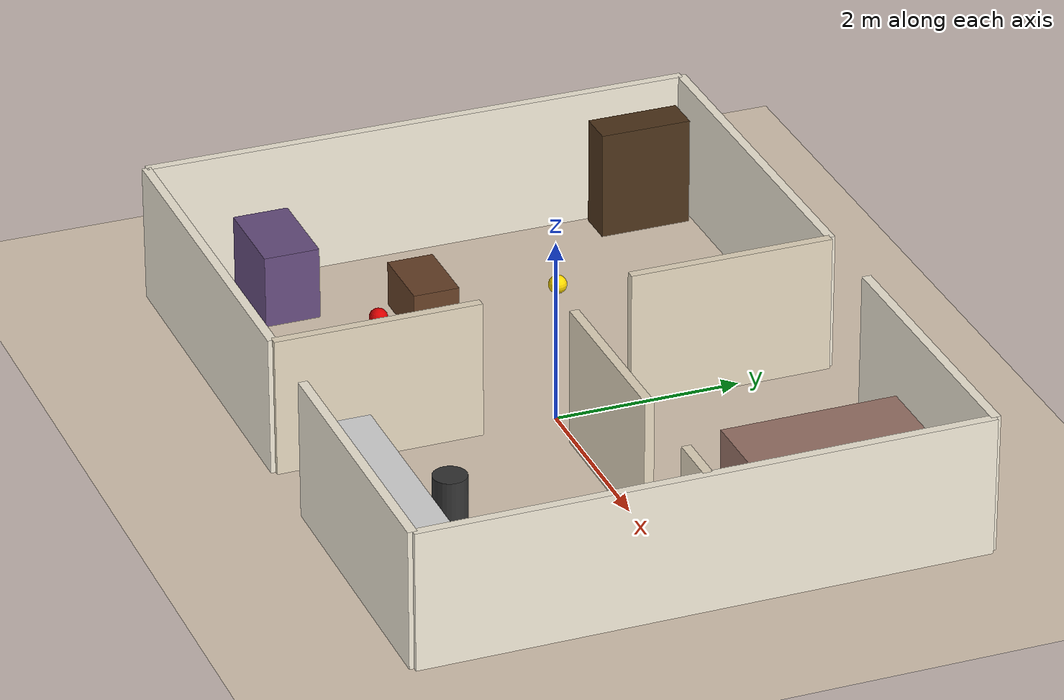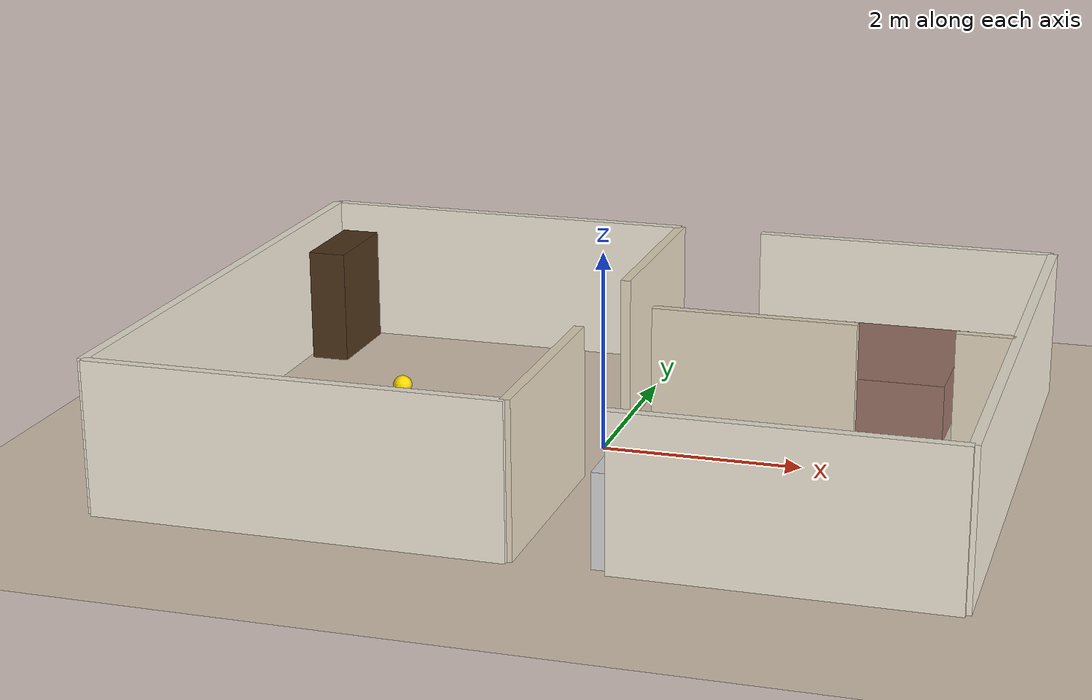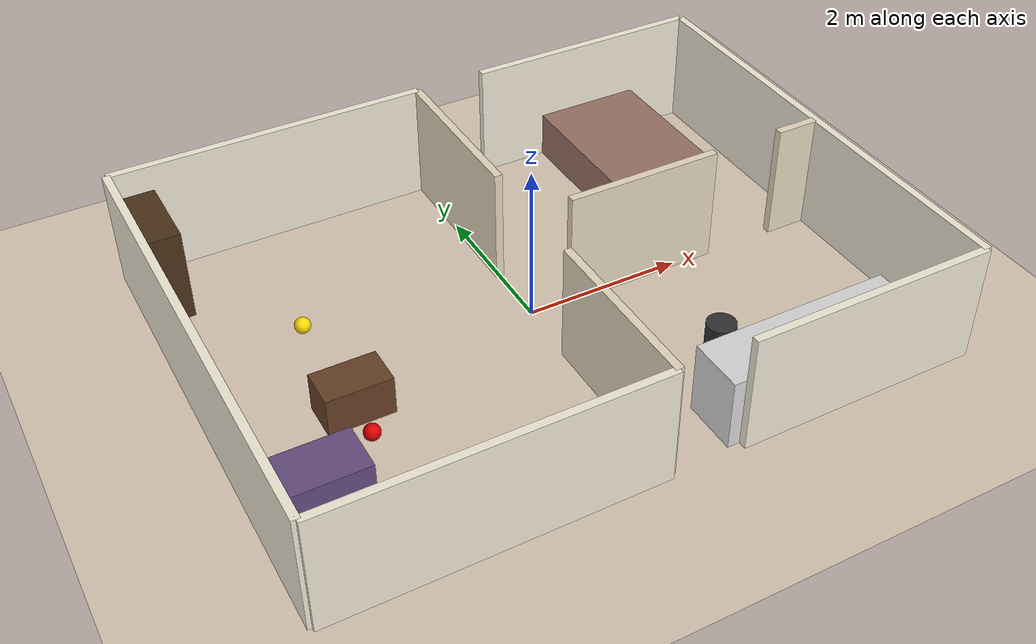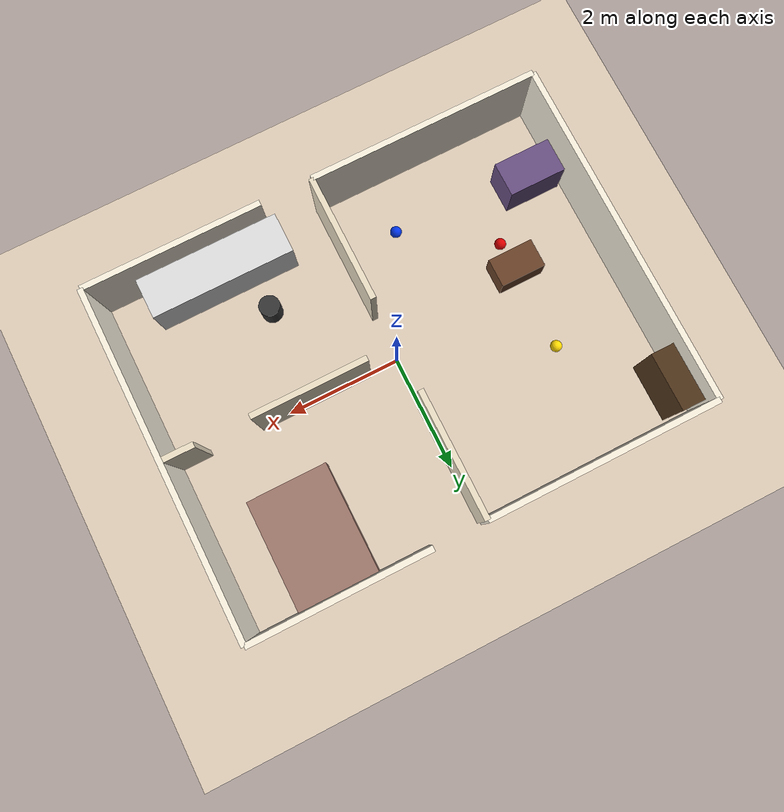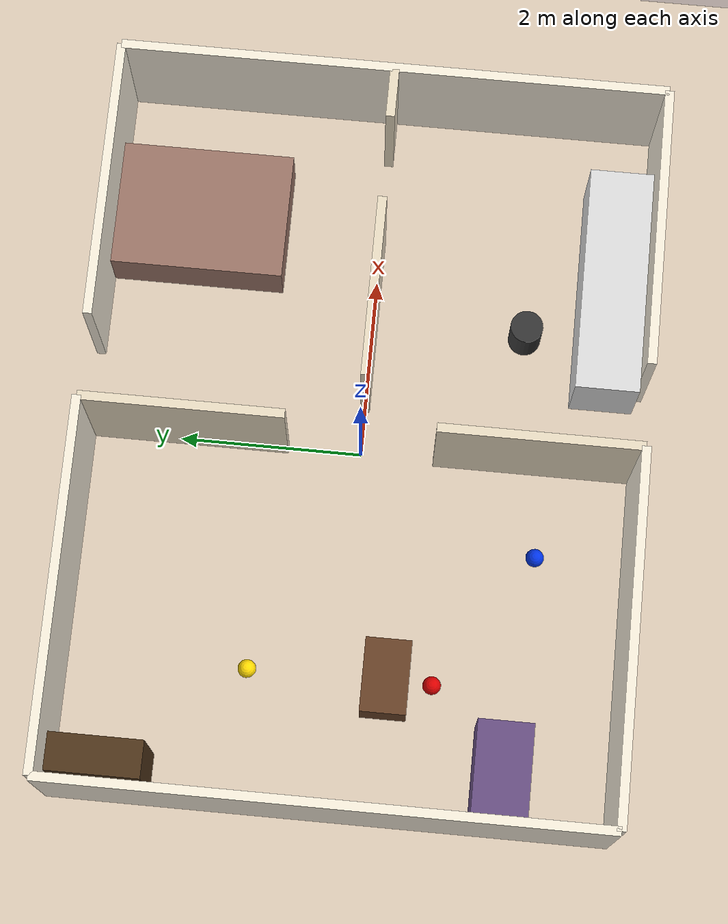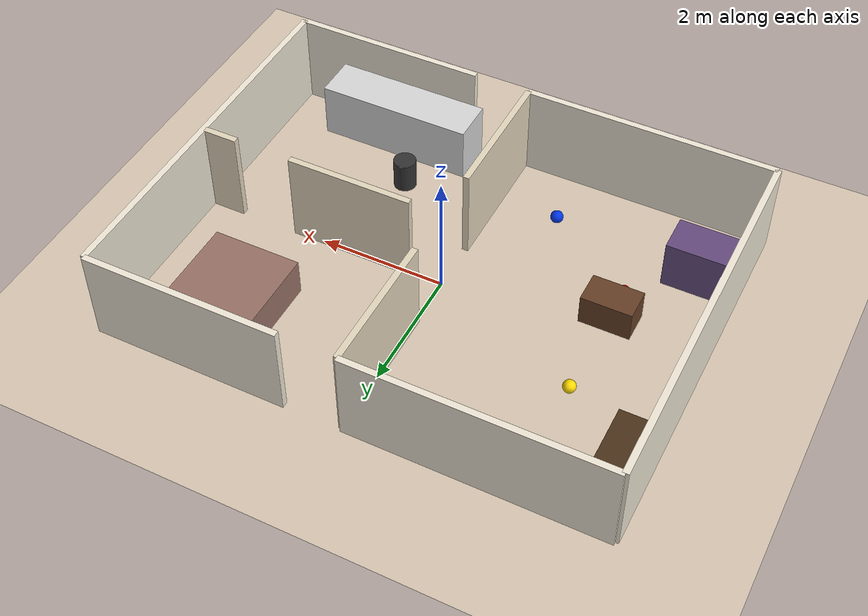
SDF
<?xml version="1.0"?>
<sdf version="1.10">
  <world name="small_house">

    <scene>
      <ambient>0.5 0.5 0.5 1</ambient>
      <background>0.7 0.85 0.95 1</background>
      <shadows>false</shadows>
    </scene>

    <physics name="5ms" type="ignored">
      <max_step_size>0.005</max_step_size>
      <real_time_factor>1.0</real_time_factor>
    </physics>

    <plugin filename="gz-sim-physics-system" name="gz::sim::systems::Physics"/>
    <plugin filename="gz-sim-user-commands-system" name="gz::sim::systems::UserCommands"/>
    <plugin filename="gz-sim-scene-broadcaster-system" name="gz::sim::systems::SceneBroadcaster"/>
    <plugin filename="gz-sim-sensors-system" name="gz::sim::systems::Sensors">
      <render_engine>ogre</render_engine>
    </plugin>
    <plugin filename="gz-sim-imu-system" name="gz::sim::systems::Imu"/>
    <plugin filename="gz-sim-contact-system" name="gz::sim::systems::Contact"/>

    <light type="directional" name="sun">
      <cast_shadows>true</cast_shadows>
      <pose>0 0 10 0 0 0</pose>
      <diffuse>0.9 0.9 0.9 1</diffuse>
      <specular>0.2 0.2 0.2 1</specular>
      <attenuation>
        <range>1000</range>
        <constant>0.9</constant>
        <linear>0.01</linear>
        <quadratic>0.001</quadratic>
      </attenuation>
      <direction>-0.4 0.2 -0.9</direction>
    </light>

    <model name="ground_plane">
      <static>true</static>
      <link name="link">
        <collision name="collision">
          <geometry><plane><normal>0 0 1</normal><size>50 50</size></plane></geometry>
        </collision>
        <visual name="visual">
          <geometry><plane><normal>0 0 1</normal><size>50 50</size></plane></geometry>
          <material>
            <ambient>0.85 0.78 0.70 1</ambient>
            <diffuse>0.85 0.78 0.70 1</diffuse>
          </material>
        </visual>
      </link>
    </model>

    <!-- Outer walls — south (bottom, y=-3) -->
    <model name="wall_south_left">
      <static>true</static>
      <pose>-2 -3 0.75 0 0 0</pose>
      <link name="l">
        <collision name="c"><geometry><box><size>4 0.1 1.5</size></box></geometry></collision>
        <visual name="v"><geometry><box><size>4 0.1 1.5</size></box></geometry>
          <material><ambient>0.95 0.92 0.85 1</ambient><diffuse>0.95 0.92 0.85 1</diffuse></material></visual>
      </link>
    </model>
    <model name="wall_south_right">
      <static>true</static>
      <pose>2.45 -3 0.75 0 0 0</pose>
      <link name="l">
        <collision name="c"><geometry><box><size>3.1 0.1 1.5</size></box></geometry></collision>
        <visual name="v"><geometry><box><size>3.1 0.1 1.5</size></box></geometry>
          <material><ambient>0.95 0.92 0.85 1</ambient><diffuse>0.95 0.92 0.85 1</diffuse></material></visual>
      </link>
    </model>

    <!-- Outer walls — north (top, y=3) -->
    <model name="wall_north_left">
      <static>true</static>
      <pose>-2 3 0.75 0 0 0</pose>
      <link name="l">
        <collision name="c"><geometry><box><size>4 0.1 1.5</size></box></geometry></collision>
        <visual name="v"><geometry><box><size>4 0.1 1.5</size></box></geometry>
          <material><ambient>0.95 0.92 0.85 1</ambient><diffuse>0.95 0.92 0.85 1</diffuse></material></visual>
      </link>
    </model>
    <model name="wall_north_right">
      <static>true</static>
      <pose>2.45 3 0.75 0 0 0</pose>
      <link name="l">
        <collision name="c"><geometry><box><size>3.1 0.1 1.5</size></box></geometry></collision>
        <visual name="v"><geometry><box><size>3.1 0.1 1.5</size></box></geometry>
          <material><ambient>0.95 0.92 0.85 1</ambient><diffuse>0.95 0.92 0.85 1</diffuse></material></visual>
      </link>
    </model>

    <!-- Outer walls — west (left, x=-4) and east (right, x=4) -->
    <model name="wall_west">
      <static>true</static>
      <pose>-4 0 0.75 0 0 0</pose>
      <link name="l">
        <collision name="c"><geometry><box><size>0.1 6 1.5</size></box></geometry></collision>
        <visual name="v"><geometry><box><size>0.1 6 1.5</size></box></geometry>
          <material><ambient>0.95 0.92 0.85 1</ambient><diffuse>0.95 0.92 0.85 1</diffuse></material></visual>
      </link>
    </model>
    <model name="wall_east">
      <static>true</static>
      <pose>4 0 0.75 0 0 0</pose>
      <link name="l">
        <collision name="c"><geometry><box><size>0.1 6 1.5</size></box></geometry></collision>
        <visual name="v"><geometry><box><size>0.1 6 1.5</size></box></geometry>
          <material><ambient>0.95 0.92 0.85 1</ambient><diffuse>0.95 0.92 0.85 1</diffuse></material></visual>
      </link>
    </model>

    <model name="div_v_bottom">
      <static>true</static>
      <pose>0 -1.9 0.75 0 0 0</pose>
      <link name="l">
        <collision name="c"><geometry><box><size>0.1 2.2 1.5</size></box></geometry></collision>
        <visual name="v"><geometry><box><size>0.1 2.2 1.5</size></box></geometry>
          <material><ambient>0.9 0.85 0.75 1</ambient><diffuse>0.9 0.85 0.75 1</diffuse></material></visual>
      </link>
    </model>
    <model name="div_v_top">
      <static>true</static>
      <pose>0 1.9 0.75 0 0 0</pose>
      <link name="l">
        <collision name="c"><geometry><box><size>0.1 2.2 1.5</size></box></geometry></collision>
        <visual name="v"><geometry><box><size>0.1 2.2 1.5</size></box></geometry>
          <material><ambient>0.9 0.85 0.75 1</ambient><diffuse>0.9 0.85 0.75 1</diffuse></material></visual>
      </link>
    </model>

    <model name="div_h_inner">
      <static>true</static>
      <pose>1.5 0 0.75 0 0 0</pose>
      <link name="l">
        <collision name="c"><geometry><box><size>2.0 0.1 1.5</size></box></geometry></collision>
        <visual name="v"><geometry><box><size>2.0 0.1 1.5</size></box></geometry>
          <material><ambient>0.9 0.85 0.75 1</ambient><diffuse>0.9 0.85 0.75 1</diffuse></material></visual>
      </link>
    </model>
    <model name="div_h_outer">
      <static>true</static>
      <pose>3.7 0 0.75 0 0 0</pose>
      <link name="l">
        <collision name="c"><geometry><box><size>0.55 0.1 1.5</size></box></geometry></collision>
        <visual name="v"><geometry><box><size>0.55 0.1 1.5</size></box></geometry>
          <material><ambient>0.9 0.85 0.75 1</ambient><diffuse>0.9 0.85 0.75 1</diffuse></material></visual>
      </link>
    </model>

    <!-- Living room: a sofa (long box) and a table (short flat box) -->
    <model name="sofa">
      <static>true</static>
      <pose>-3.4 -1.8 0.4 0 0 0</pose>
      <link name="l">
        <collision name="c"><geometry><box><size>1.0 0.6 0.8</size></box></geometry></collision>
        <visual name="v"><geometry><box><size>1.0 0.6 0.8</size></box></geometry>
          <material><ambient>0.4 0.3 0.5 1</ambient><diffuse>0.4 0.3 0.5 1</diffuse></material></visual>
      </link>
    </model>
    <model name="coffee_table">
      <static>true</static>
      <pose>-2.5 -0.5 0.25 0 0 0</pose>
      <link name="l">
        <collision name="c"><geometry><box><size>0.8 0.5 0.5</size></box></geometry></collision>
        <visual name="v"><geometry><box><size>0.8 0.5 0.5</size></box></geometry>
          <material><ambient>0.4 0.25 0.15 1</ambient><diffuse>0.4 0.25 0.15 1</diffuse></material></visual>
      </link>
    </model>
    <model name="bookshelf">
      <static>true</static>
      <pose>-3.7 2.4 0.6 0 0 0</pose>
      <link name="l">
        <collision name="c"><geometry><box><size>0.4 1.0 1.2</size></box></geometry></collision>
        <visual name="v"><geometry><box><size>0.4 1.0 1.2</size></box></geometry>
          <material><ambient>0.3 0.2 0.1 1</ambient><diffuse>0.3 0.2 0.1 1</diffuse></material></visual>
      </link>
    </model>

    <!-- Bedroom (top right): a bed -->
    <model name="bed">
      <static>true</static>
      <pose>2.5 2.0 0.3 0 0 0</pose>
      <link name="l">
        <collision name="c"><geometry><box><size>1.4 1.9 0.6</size></box></geometry></collision>
        <visual name="v"><geometry><box><size>1.4 1.9 0.6</size></box></geometry>
          <material><ambient>0.6 0.45 0.4 1</ambient><diffuse>0.6 0.45 0.4 1</diffuse></material></visual>
      </link>
    </model>

    <!-- Kitchen nook (bottom right): counter and a stool -->
    <model name="counter">
      <static>true</static>
      <pose>2.0 -2.6 0.45 0 0 0</pose>
      <link name="l">
        <collision name="c"><geometry><box><size>2.5 0.7 0.9</size></box></geometry></collision>
        <visual name="v"><geometry><box><size>2.5 0.7 0.9</size></box></geometry>
          <material><ambient>0.85 0.85 0.85 1</ambient><diffuse>0.85 0.85 0.85 1</diffuse></material></visual>
      </link>
    </model>
    <model name="stool">
      <static>true</static>
      <pose>1.5 -1.7 0.25 0 0 0</pose>
      <link name="l">
        <collision name="c"><geometry><cylinder><radius>0.18</radius><length>0.5</length></cylinder></geometry></collision>
        <visual name="v"><geometry><cylinder><radius>0.18</radius><length>0.5</length></cylinder></geometry>
          <material><ambient>0.2 0.2 0.2 1</ambient><diffuse>0.2 0.2 0.2 1</diffuse></material></visual>
      </link>
    </model>

    <model name="ball_yellow">
      <static>true</static>
      <pose>-2.5 1.0 0.10 0 0 0</pose>
      <link name="l">
        <collision name="c"><geometry><sphere><radius>0.10</radius></sphere></geometry></collision>
        <visual name="v"><geometry><sphere><radius>0.10</radius></sphere></geometry>
          <material><ambient>1.0 0.85 0.0 1</ambient><diffuse>1.0 0.85 0.0 1</diffuse></material>
        </visual>
      </link>
    </model>
    <model name="ball_red">
      <static>true</static>
      <pose>-2.5 -1.0 0.10 0 0 0</pose>
      <link name="l">
        <collision name="c"><geometry><sphere><radius>0.10</radius></sphere></geometry></collision>
        <visual name="v"><geometry><sphere><radius>0.10</radius></sphere></geometry>
          <material><ambient>0.85 0.0 0.0 1</ambient><diffuse>0.85 0.0 0.0 1</diffuse></material>
        </visual>
      </link>
    </model>
    <model name="ball_blue">
      <static>true</static>
      <pose>-1.0 -2.0 0.10 0 0 0</pose>
      <link name="l">
        <collision name="c"><geometry><sphere><radius>0.10</radius></sphere></geometry></collision>
        <visual name="v"><geometry><sphere><radius>0.10</radius></sphere></geometry>
          <material><ambient>0.0 0.2 0.9 1</ambient><diffuse>0.0 0.2 0.9 1</diffuse></material>
        </visual>
      </link>
    </model>

  </world>
</sdf>
